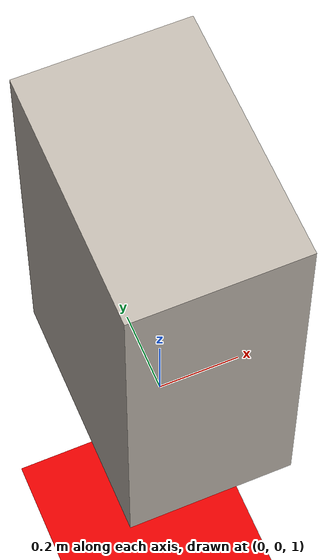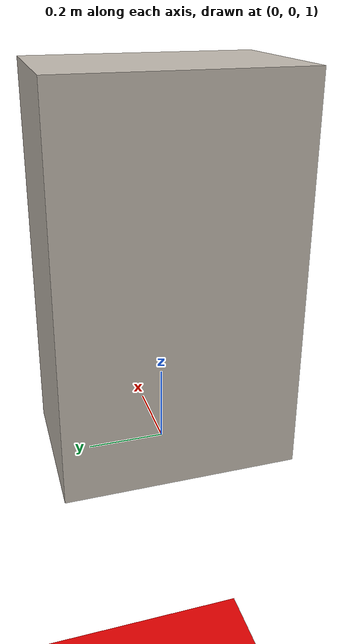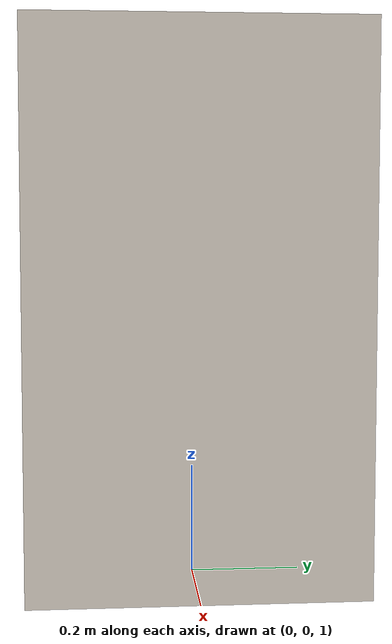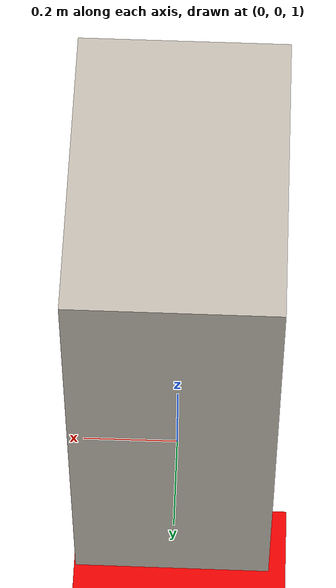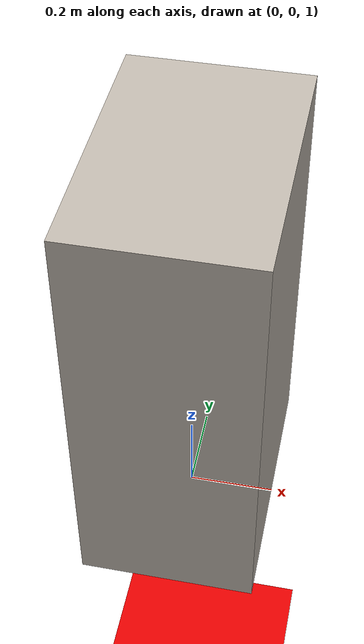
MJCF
<mujoco>
  <asset>
    <texture type="cube" name="hero_body_texture" file="/home/artalmaz31/tung_playground/heroes/tung_tung_sahur/body.png"/>
    <texture type="cube" name="hero_leg_texture" file="/home/artalmaz31/tung_playground/heroes/tung_tung_sahur/leg.png"/>
    <material name="hero_body_material" texture="hero_body_texture"/>
    <material name="hero_leg_material" texture="hero_leg_texture"/>
  </asset>
  <worldbody>
    <light diffuse=".5 .5 .5" pos="0 0 3" dir="0 0 -1"/>
    <geom type="plane" size="1 1 0.1" rgba=".9 0 0 1"/>
    <body name="torso" pos="0 0 1.5">
      <joint type="free"/>
      <geom type="box" size=".2 .3 .5" material="hero_body_material"/>
      <body name="leg1" pos="0 .15 .0">
        <joint type="hinge" axis="1 0 0" pos="0 0 -.4"/>
        <geom type="box" size=".1 .1 .3" material="hero_leg_material"/>
      </body>
      <body name="leg2" pos="0 -.15 .0">
        <joint type="hinge" axis="1 0 0" pos="0 0 -.4"/>
        <geom type="box" size=".1 .1 .3" material="hero_leg_material"/>
      </body>
    </body>
  </worldbody>
</mujoco>
